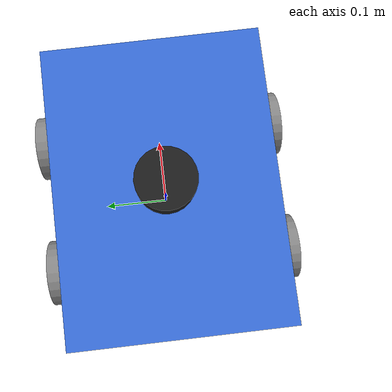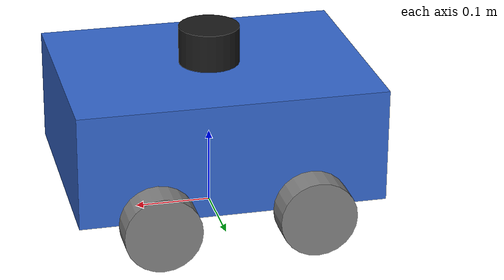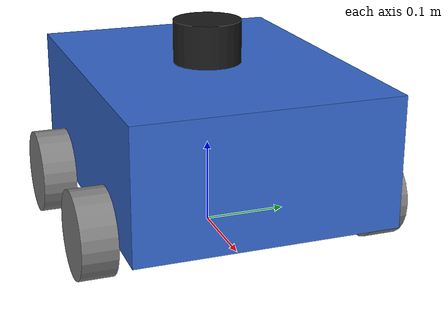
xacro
<?xml version="1.0"?>
<robot name="4wd_robot" xmlns:xacro="http://www.ros.org/wiki/xacro">

    <xacro:arg name="use_ros2_control" default="true"/>
    <xacro:arg name="sim_mode" default="true"/>
    <xacro:arg name="controller_config_path" default=""/>

    <xacro:include filename="$(find four_wd_description)/urdf/robot_core.xacro" />
    <xacro:include filename="$(find four_wd_description)/urdf/lidar.xacro" />
    <xacro:include filename="$(find four_wd_description)/urdf/ros2_control.xacro" />

</robot>

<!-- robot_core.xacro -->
<robot name="4wd_robot" xmlns:xacro="http://www.ros.org/wiki/xacro">

    <xacro:property name="base_width" value="0.3"/>
    <xacro:property name="base_length" value="0.4"/>
    <xacro:property name="base_height" value="0.15"/>
    <xacro:property name="wheel_radius" value="0.05"/>
    <xacro:property name="wheel_width" value="0.04"/>

    <link name="base_footprint"/>

    <link name="base_link">
        <visual>
            <origin xyz="0 0 ${base_height/2}" rpy="0 0 0"/>
            <geometry>
                <box size="${base_length} ${base_width} ${base_height}"/>
            </geometry>
            <material name="blue">
                <color rgba="0.2 0.4 0.8 1"/>
            </material>
        </visual>
        <collision>
            <origin xyz="0 0 ${base_height/2}" rpy="0 0 0"/>
            <geometry>
                <box size="${base_length - 0.05} ${base_width} ${base_height - 0.01}"/>
            </geometry>
        </collision>
        <inertial>
            <origin xyz="0 0 ${base_height/2}" rpy="0 0 0"/>
            <mass value="5.0"/>
            <inertia ixx="0.1" ixy="0.0" ixz="0.0" iyy="0.1" iyz="0.0" izz="0.1"/>
        </inertial>
    </link>

    <xacro:macro name="wheel_link" params="prefix">
        <link name="${prefix}_wheel_link">
            <visual>
                <origin xyz="0 0 0" rpy="${pi/2} 0 0"/>
                <geometry>
                    <cylinder radius="${wheel_radius}" length="${wheel_width}"/>
                </geometry>
                <material name="gray">
                    <color rgba="0.5 0.5 0.5 1"/>
                </material>
            </visual>
            <collision>
                <origin xyz="0 0 0" rpy="${pi/2} 0 0"/>
                <geometry>
                    <cylinder radius="${wheel_radius}" length="${wheel_width}"/>
                </geometry>
            </collision>
            <inertial>
                <mass value="0.5"/>
                <inertia ixx="0.001" ixy="0.0" ixz="0.0" iyy="0.001" iyz="0.0" izz="0.001"/>
            </inertial>
        </link>
    </xacro:macro>

    <xacro:wheel_link prefix="front_left"/>
    <xacro:wheel_link prefix="front_right"/>
    <xacro:wheel_link prefix="back_left"/>
    <xacro:wheel_link prefix="back_right"/>

    <joint name="base_joint" type="fixed">
        <parent link="base_footprint"/>
        <child link="base_link"/>
        <origin xyz="0 0 ${wheel_radius}" rpy="0 0 0"/>
    </joint>

    <xacro:macro name="wheel_joint" params="prefix x_pos y_pos">
        <joint name="${prefix}_wheel_joint" type="continuous">
            <parent link="base_link"/>
            <child link="${prefix}_wheel_link"/>
            <origin xyz="${x_pos} ${y_pos} 0" rpy="0 0 0"/>
            <axis xyz="0 1 0"/>
        </joint>
    </xacro:macro>

    <xacro:wheel_joint prefix="front_left" x_pos="${base_length/4}" y_pos="${base_width/2 + wheel_width/2}"/>
    <xacro:wheel_joint prefix="front_right" x_pos="${base_length/4}" y_pos="-${base_width/2 + wheel_width/2}"/>
    <xacro:wheel_joint prefix="back_left" x_pos="-${base_length/4}" y_pos="${base_width/2 + wheel_width/2}"/>
    <xacro:wheel_joint prefix="back_right" x_pos="-${base_length/4}" y_pos="-${base_width/2 + wheel_width/2}"/>

</robot>

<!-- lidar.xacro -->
<robot name="4wd_robot" xmlns:xacro="http://www.ros.org/wiki/xacro">

    <xacro:property name="lidar_radius" value="0.04"/>
    <xacro:property name="lidar_height" value="0.05"/>

    <link name="lidar_link">
        <visual>
            <geometry>
                <cylinder radius="${lidar_radius}" length="${lidar_height}"/>
            </geometry>
            <material name="black">
                <color rgba="0.1 0.1 0.1 1"/>
            </material>
        </visual>
        <collision>
            <geometry>
                <cylinder radius="${lidar_radius}" length="${lidar_height}"/>
            </geometry>
        </collision>
        <inertial>
            <mass value="0.2"/>
            <inertia ixx="0.0001" ixy="0.0" ixz="0.0" iyy="0.0001" iyz="0.0" izz="0.0001"/>
        </inertial>
    </link>

    <joint name="lidar_joint" type="fixed">
        <parent link="base_link"/>
        <child link="lidar_link"/>
        <origin xyz="0 0 ${base_height + lidar_height/2}" rpy="0 0 0"/>
    </joint>

    <gazebo reference="lidar_link">
        <sensor name="gpu_lidar" type="gpu_lidar">
            <pose>0 0 0 0 0 0</pose>
            <visualize>true</visualize>
            <topic>/scan</topic>
            <update_rate>10</update_rate>
            <lidar>
                <scan>
                    <horizontal>
                        <samples>360</samples>
                        <resolution>1</resolution>
                        <min_angle>-3.14159</min_angle>
                        <max_angle>3.14159</max_angle>
                    </horizontal>
                </scan>
                <range>
                    <min>0.12</min>
                    <max>12.0</max>
                    <resolution>0.01</resolution>
                </range>
            </lidar>
        </sensor>
    </gazebo>

</robot>
